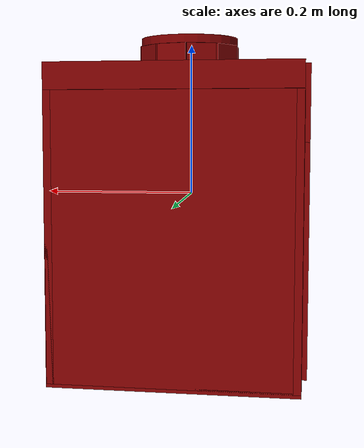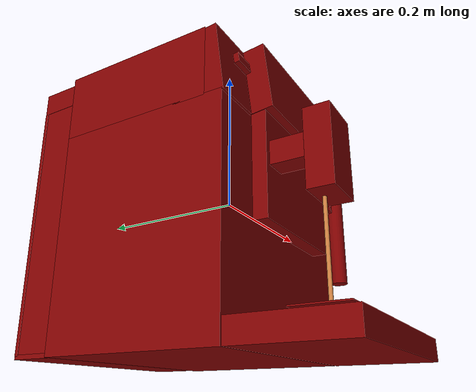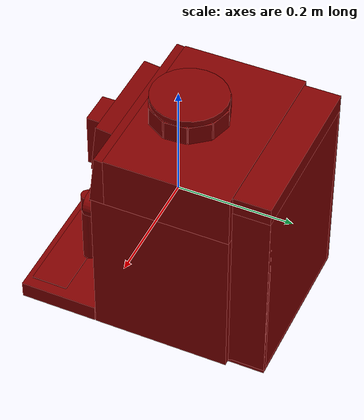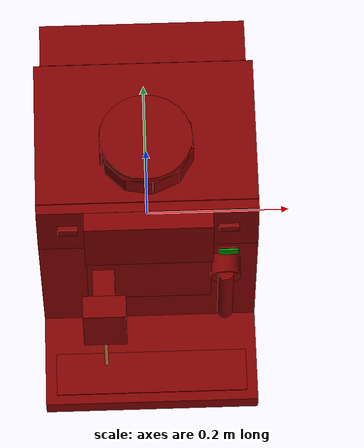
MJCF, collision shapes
<?xml version='1.0' encoding='UTF-8'?>
<mujoco model="model">
  <option timestep="0.002" gravity="0.0 0.0 -9.81"/>
  <compiler angle="radian"/>
  <asset>
    <mesh file="visuals/Body001.obj" name="Body001_vis"/>
    <mesh file="visuals/Body002.obj" name="Body002_vis"/>
    <mesh file="visuals/Button001.obj" name="Button001_vis"/>
    <mesh file="visuals/Button002.obj" name="Button002_vis"/>
    <mesh file="visuals/Button003.obj" name="Button003_vis"/>
    <mesh file="visuals/Container001_Clear.obj" name="Container001_Clear_vis"/>
    <mesh file="visuals/Container002_Clear.obj" name="Container002_Clear_vis"/>
    <mesh file="visuals/Lid001.obj" name="Lid001_vis"/>
    <mesh file="visuals/Lid002.obj" name="Lid002_vis"/>
    <mesh file="visuals/Lid003_Clear.obj" name="Lid003_Clear_vis"/>
    <texture file="visuals/T_BC001.png" name="Body001_material" type="2d"/>
    <material name="Body001_material" rgba="1 1 1 1.0" texture="Body001_material" shininess="0.141421377658844" specular="0.3103448502657381"/>
    <texture file="visuals/T_BC001.png" name="Body002_material" type="2d"/>
    <material name="Body002_material" rgba="1 1 1 1.0" texture="Body002_material" shininess="0.141421377658844" specular="0.3103448502657381"/>
    <texture file="visuals/T_BC001.png" name="Button001_material" type="2d"/>
    <material name="Button001_material" rgba="1 1 1 1.0" texture="Button001_material" shininess="0.141421377658844" specular="0.3103448502657381"/>
    <texture file="visuals/T_BC001.png" name="Button002_material" type="2d"/>
    <material name="Button002_material" rgba="1 1 1 1.0" texture="Button002_material" shininess="0.141421377658844" specular="0.3103448502657381"/>
    <texture file="visuals/T_BC001.png" name="Button003_material" type="2d"/>
    <material name="Button003_material" rgba="1 1 1 1.0" texture="Button003_material" shininess="0.141421377658844" specular="0.3103448502657381"/>
    <texture file="visuals/T_BC001.png" name="Container001_Clear_material" type="2d"/>
    <material name="Container001_Clear_material" rgba="1 1 1 0.162162184715271" texture="Container001_Clear_material" shininess="0.141421377658844" specular="0.3103448502657381"/>
    <texture file="visuals/T_BC001.png" name="Lid002_material" type="2d"/>
    <material name="Lid002_material" rgba="1 1 1 1.0" texture="Lid002_material" shininess="0.141421377658844" specular="0.3103448502657381"/>
    <texture file="visuals/T_BC001.png" name="Container002_Clear_material" type="2d"/>
    <material name="Container002_Clear_material" rgba="1 1 1 0.162162184715271" texture="Container002_Clear_material" shininess="0.141421377658844" specular="0.3103448502657381"/>
    <texture file="visuals/T_BC001.png" name="Lid003_Clear_material" type="2d"/>
    <material name="Lid003_Clear_material" rgba="1 1 1 0.162162184715271" texture="Lid003_Clear_material" shininess="0.141421377658844" specular="0.3103448502657381"/>
    <texture file="visuals/T_BC001.png" name="Lid001_material" type="2d"/>
    <material name="Lid001_material" rgba="1 1 1 1.0" texture="Lid001_material" shininess="0.141421377658844" specular="0.3103448502657381"/>
  </asset>
  <default>
    <default class="visual">
      <geom conaffinity="0" contype="0" group="1" type="mesh"/>
    </default>
    <default class="collision">
      <geom group="0" rgba="0.5 0 0 0.5"/>
    </default>
    <default class="spawn">
      <geom group="0" rgba="1 1 1 0.5" contype="0" conaffinity="0"/>
      <site group="0" rgba="1 1 1 0.5"/>
    </default>
    <default class="region">
      <geom group="1" conaffinity="0" contype="0" rgba="0 1 0 0"/>
    </default>
  </default>
  <worldbody>
    <body>
      <body name="object">
        <geom class="collision" type="box" pos="0.11097416 -0.09258504 0.06666747" size="0.013786286115646362 0.0016257489332929254 0.006435349117964506" quat="0.9999545216560364 -0.009536411613225937 1.4419180827452864e-17 1.0791499600991837e-18" name="start_button_1" rgba="0.0 0.5 0 0.5"/>
        <geom mesh="Body001_vis" type="mesh" solimp="0.998 0.998 0.001" solref="0.001 1" friction="0.95 0.3 0.1" class="visual" material="Body001_material"/>
        <geom class="collision" type="box" pos="-0.00014855 0.03666674 -0.06582155" size="0.15222634375095367 0.1174095943570137 0.13884788751602173" quat="1.0 0.0 0.0 0.0"/>
        <geom class="collision" type="box" pos="-0.00014855 -0.14968301 -0.19027221" size="0.15222634375095367 0.06740334630012512 0.014397211372852325" quat="1.0 0.0 0.0 0.0"/>
        <geom class="collision" type="box" pos="-0.00014855 0.04821284 0.11699657" size="0.15222634375095367 0.10586349666118622 0.04567587003111839" quat="1.0 0.0 0.0 0.0"/>
        <geom class="collision" type="box" pos="-0.00014855 -0.06192963 0.11482750" size="0.15222632884979248 0.015721241012215614 0.04580586031079292" quat="0.9982902407646179 -0.05845163017511368 -0.0 0.0"/>
        <geom class="collision" type="box" pos="-0.06376470 -0.12203941 0.01961560" size="0.015217606909573078 0.026403842493891716 0.015217606909573078" quat="1.0 0.0 0.0 0.0"/>
        <geom class="collision" type="box" pos="-0.06338580 -0.16541546 0.00709373" size="0.029969006776809692 0.016063755378127098 0.048807743936777115" quat="1.0 0.0 0.0 0.0"/>
        <geom class="collision" type="cylinder" pos="0.10695391 -0.08868386 0.01666688" size="0.020816057920455933 0.020816057920455933" quat="0.7071068286895752 0.7071067690849304 0.0 0.0"/>
        <geom class="collision" type="cylinder" pos="0.10695391 -0.10988946 -0.03381695" size="0.01090256031602621 0.0671624094247818" quat="1.0 0.0 0.0 0.0"/>
        <geom class="collision" type="box" pos="0.00074333 -0.08889366 0.11799594" size="0.08846832066774368 0.016827519983053207 0.045675866305828094" quat="0.9982902407646179 -0.05845163017511368 -0.0 0.0"/>
        <geom class="collision" type="box" pos="0.00015143 -0.09141111 0.00529302" size="0.08690224587917328 0.009467421099543571 0.06773331761360168" quat="1.0 0.0 0.0 0.0"/>
        <body name="Body002">
          <geom mesh="Body002_vis" type="mesh" solimp="0.998 0.998 0.001" solref="0.001 1" friction="0.95 0.3 0.1" class="visual" material="Body002_material"/>
        </body>
        <body name="Button001">
          <joint axis="-1.9490277747158204e-18 0.9902491569519043 -0.13930730521678925" pos="-0.10995227 -0.08280369 0.12864336" limited="true" name="Button001_joint" range="0.0 0.002" type="slide" damping="1" frictionloss="1" armature=".01" stiffness="0.2" springref="-0.1"/>
          <geom mesh="Button001_vis" type="mesh" solimp="0.998 0.998 0.001" solref="0.001 1" friction="0.95 0.3 0.1" class="visual" material="Button001_material"/>
          <geom class="collision" type="box" pos="-0.11005852 -0.08281427 0.12869258" size="0.013723230920732021 0.003451156197115779 0.006442605052143335" quat="0.9971855282783508 -0.07497342675924301 1.0610365658406506e-17 2.8891601584069054e-19"/>
        </body>
        <body name="Button002">
          <joint axis="-2.0642680961148706e-18 0.9894748330116272 -0.14470498263835907" pos="0.11102561 -0.08280532 0.12864552" limited="true" name="Button002_joint" range="0.0 0.002" type="slide" damping="1" frictionloss="1" armature=".01" stiffness="0.2" springref="-0.1"/>
          <geom mesh="Button002_vis" type="mesh" solimp="0.998 0.998 0.001" solref="0.001 1" friction="0.95 0.3 0.1" class="visual" material="Button002_material"/>
          <geom class="collision" type="box" pos="0.11105052 -0.08421092 0.12881505" size="0.013723230920732021 0.002636321121826768 0.006442605052143335" quat="0.9971855282783508 -0.07497342675924301 1.0610365658406506e-17 2.8891601584069054e-19"/>
        </body>
        <body name="Button003">
          <joint axis="-2.1708271569851767e-18 0.9999904632568359 -0.004362225066870451" pos="0.11099051 -0.09003088 0.06634872" limited="true" name="Button003_joint" range="0.0 0.002" type="slide" damping="1" frictionloss="1" armature=".01" stiffness="0.2" springref="-0.1"/>
          <geom mesh="Button003_vis" type="mesh" solimp="0.998 0.998 0.001" solref="0.001 1" friction="0.95 0.3 0.1" class="visual" material="Button003_material"/>
          <geom class="collision" type="box" pos="0.11097416 -0.08884868 0.06659620" size="0.013786286115646362 0.0016257489332929254 0.006435349117964506" quat="0.9999545216560364 -0.009536411613225937 1.4419180827452864e-17 1.0791499600991837e-18"/>
        </body>
        <body name="Container001_Clear">
          <geom mesh="Container001_Clear_vis" type="mesh" solimp="0.998 0.998 0.001" solref="0.001 1" friction="0.95 0.3 0.1" class="visual" material="Container001_Clear_material"/>
          <geom class="collision" type="box" pos="-0.06069570 0.01882754 0.17863213" size="0.0027686110697686672 0.019005214795470238 0.016880374401807785" quat="1.0 0.0 0.0 0.0"/>
          <geom class="collision" type="box" pos="-0.04961877 0.05443280 0.17863213" size="0.0027686110697686672 0.019005214795470238 0.016880374401807785" quat="0.9523167014122009 0.0 -0.0 -0.3051113784313202"/>
          <geom class="collision" type="box" pos="-0.01985751 0.07699134 0.17863213" size="0.0027686110697686672 0.019005214795470238 0.016880374401807785" quat="0.8135338425636292 0.0 -0.0 -0.5815175771713257"/>
          <geom class="collision" type="box" pos="0.01649854 0.07829345 0.17863213" size="0.0027686110697686672 0.019005214795470238 0.016880374401807785" quat="0.6035531759262085 0.0 -0.0 -0.7973227500915527"/>
          <geom class="collision" type="box" pos="0.04754421 0.05823067 0.17863213" size="0.0027686110697686672 0.019005214795470238 0.016880374401807785" quat="0.33412817120552063 0.0 -0.0 -0.9425276517868042"/>
          <geom class="collision" type="box" pos="0.06133821 0.02398695 0.17863213" size="0.0027686110697686672 0.019005214795470238 0.016880374401807785" quat="0.03380401059985161 0.0 -0.0 -0.9994285106658936"/>
          <geom class="collision" type="box" pos="0.05298352 -0.01179911 0.17863213" size="0.0027686108369380236 0.019005214795470238 0.016880374401807785" quat="0.2682803273200989 0.0 0.0 0.9633408784866333"/>
          <geom class="collision" type="box" pos="0.02615380 -0.03607470 0.17863213" size="0.0027686110697686672 0.019005214795470238 0.016880374401807785" quat="0.5414576530456543 0.0 0.0 0.8407280445098877"/>
          <geom class="collision" type="box" pos="-0.01023106 -0.04082955 0.17863213" size="0.0027686110697686672 0.019005214795470238 0.016880374401807785" quat="0.7689027786254883 0.0 0.0 0.6393657326698303"/>
          <geom class="collision" type="box" pos="-0.04242105 -0.02424118 0.17863213" size="0.0027686108369380236 0.019005214795470238 0.016880374401807785" quat="0.9238231182098389 0.0 0.0 0.38281962275505066"/>
          <geom class="collision" type="box" pos="-0.05579307 -0.00471550 0.17863213" size="0.0027686110697686672 0.008690915070474148 0.016880374401807785" quat="0.9826682209968567 0.0 0.0 0.18537317216396332"/>
          <body name="Lid002">
            <geom mesh="Lid002_vis" type="mesh" solimp="0.998 0.998 0.001" solref="0.001 1" friction="0.95 0.3 0.1" class="visual" material="Lid002_material"/>
            <geom class="collision" type="cylinder" pos="0.00040851 0.01934345 0.20107737" size="0.06373236328363419 0.005221039988100529" quat="1.0 0.0 0.0 0.0"/>
          </body>
        </body>
        <body name="Container002_Clear">
          <geom mesh="Container002_Clear_vis" type="mesh" solimp="0.998 0.998 0.001" solref="0.001 1" friction="0.95 0.3 0.1" class="visual" material="Container002_Clear_material"/>
          <geom class="collision" type="box" pos="-0.00040271 0.18586593 -0.20152831" size="0.14280526340007782 0.03109958954155445 0.002834065817296505" quat="1.0 0.0 0.0 0.0"/>
          <geom class="collision" type="box" pos="0.13809250 0.18586593 -0.03452886" size="0.0043100579641759396 0.03109958954155445 0.1658276617527008" quat="1.0 0.0 0.0 0.0"/>
          <geom class="collision" type="box" pos="-0.13883561 0.18586593 -0.03452886" size="0.0043100579641759396 0.03109958954155445 0.1658276617527008" quat="1.0 0.0 0.0 0.0"/>
          <geom class="collision" type="box" pos="-0.00080382 0.21442658 -0.03452885" size="0.14277392625808716 0.0025389317888766527 0.1658276617527008" quat="1.0 0.0 0.0 0.0"/>
          <geom class="collision" type="box" pos="-0.00080382 0.15768862 -0.03452885" size="0.14277392625808716 0.0025389317888766527 0.1658276617527008" quat="1.0 0.0 0.0 0.0"/>
          <body name="Lid003_Clear">
            <geom mesh="Lid003_Clear_vis" type="mesh" solimp="0.998 0.998 0.001" solref="0.001 1" friction="0.95 0.3 0.1" class="visual" material="Lid003_Clear_material"/>
            <geom class="collision" type="box" pos="-0.00040271 0.18586593 0.14679757" size="0.14280526340007782 0.03109958954155445 0.015227675437927246" quat="1.0 0.0 0.0 0.0"/>
          </body>
        </body>
        <body name="Lid001">
          <geom mesh="Lid001_vis" type="mesh" solimp="0.998 0.998 0.001" solref="0.001 1" friction="0.95 0.3 0.1" class="visual" material="Lid001_material"/>
          <geom class="collision" type="box" pos="0.00017384 -0.17344810 -0.17029336" size="0.13666367530822754 0.031431645154953 0.000878939579706639" quat="1.0 0.0 0.0 0.0"/>
        </body>
        <site type="cylinder" rgba="0.8 0.5 0.25 1" size="0.0024869528133422136 0.0678064301609993" pos="-0.06403755 -0.15885305 -0.10707786" name="coffee_liquid"/>
        <site rgba="0 0 0 0" size="0.009999999776482582 0.009999999776482582" pos="-0.06403755 -0.17885305 -0.16685487" name="receptacle_place_site"/>
        <geom class="region" name="reg_main" type="box" pos="0.0 2.733500000000333e-05 0.0" size="0.1530555 0.217147635 0.20701559"/>
      </body>
    </body>
  </worldbody>
  <actuator>
    <motor name="Button001_joint_actuator" joint="Button001_joint" gear="0.5"/>
    <motor name="Button002_joint_actuator" joint="Button002_joint" gear="0.5"/>
    <motor name="Button003_joint_actuator" joint="Button003_joint" gear="0.5"/>
  </actuator>
</mujoco>
